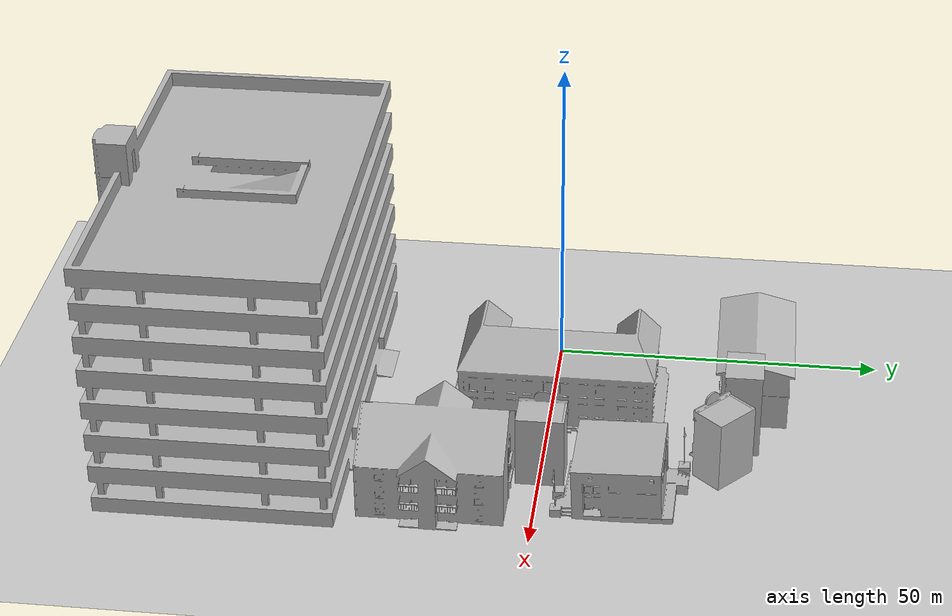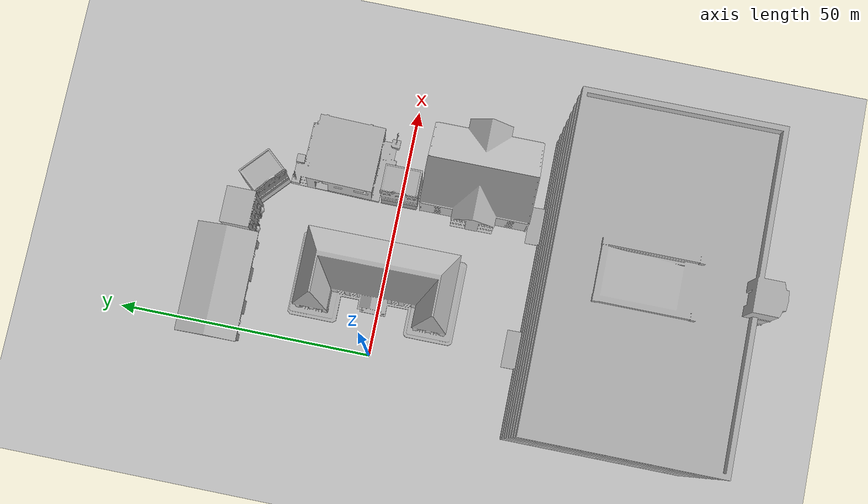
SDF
<sdf version="1.7">
 <world name="default">
  <light name="sun" type="directional">
   <pose>0 0 10 0 -0 0</pose>
   <diffuse>0.8 0.8 0.8 1</diffuse>
   <specular>0.2 0.2 0.2 1</specular>
   <attenuation>
    <range>1000</range>
    <constant>0.9</constant>
    <linear>0.01</linear>
    <quadratic>0.001</quadratic>
   </attenuation>
   <direction>-0.5 0.1 -0.9</direction>
   <spot><inner_angle>0</inner_angle><outer_angle>0</outer_angle><falloff>0</falloff></spot>
  </light>
  <model name="ground_plane">
   <static>1</static>
   <link name="link">
    <collision name="collision">
     <geometry><plane><normal>0 0 1</normal><size>100 100</size></plane></geometry>
     <surface>
      <contact><collide_bitmask>65535</collide_bitmask></contact>
      <friction><ode><mu>100</mu><mu2>50</mu2></ode></friction>
     </surface>
    </collision>
    <visual name="visual">
     <cast_shadows>0</cast_shadows>
     <geometry><plane><normal>0 0 1</normal><size>100 100</size></plane></geometry>
     <material>
      <script><uri>file://media/materials/scripts/gazebo.material</uri><name>Gazebo/Grey</name></script>
     </material>
    </visual>
   </link>
  </model>
  <gravity>0 0 -9.8</gravity>
  <magnetic_field>6e-06 2.3e-05 -4.2e-05</magnetic_field>
  <atmosphere type="adiabatic"/>
  <physics type="ode">
   <max_step_size>0.001</max_step_size>
   <real_time_factor>1</real_time_factor>
   <real_time_update_rate>1000</real_time_update_rate>
  </physics>
  <scene><ambient>0.4 0.4 0.4 1</ambient><background>0.7 0.7 0.7 1</background><shadows>1</shadows></scene>
  <audio><device>default</device></audio>
  <spherical_coordinates>
   <surface_model>EARTH_WGS84</surface_model>
   <latitude_deg>0</latitude_deg>
   <longitude_deg>0</longitude_deg>
   <elevation>0</elevation>
   <heading_deg>0</heading_deg>
  </spherical_coordinates>
  <model name="school">
   <static>1</static>
   <link name="link">
    <collision name="collision">
     <geometry><mesh><uri>model://school/meshes/school.dae</uri></mesh></geometry>
    </collision>
    <visual name="visual"><geometry><mesh><uri>model://school/meshes/school.dae</uri></mesh></geometry></visual>
   </link>
   <pose>16.0941 1.03506 0 0 0 -1.57</pose>
  </model>
  <model name="thrift_shop">
   <static>1</static>
   <link name="link">
    <collision name="collision">
     <pose>0 0 5.69469 0 -0 0</pose>
     <geometry><box><size>7.21297 5.43165 11.3894</size></box></geometry>
    </collision>
    <visual name="visual">
     <pose>0 -0.912491 0 0 -0 0</pose>
     <geometry><mesh><uri>model://thrift_shop/meshes/thrift_shop.dae</uri></mesh></geometry>
    </visual>
   </link>
   <pose>33.3965 0.162969 0 0 0 -1.57</pose>
  </model>
  <model name="salon">
   <static>1</static>
   <link name="link">
    <collision name="collision">
     <pose>0 0 5.69469 0 -0 0</pose>
     <geometry><box><size>7.21297 5.37875 11.3894</size></box></geometry>
    </collision>
    <visual name="visual">
     <pose>0 -0.903605 0 0 -0 0</pose>
     <geometry><mesh><uri>model://salon/meshes/salon.dae</uri></mesh></geometry>
    </visual>
   </link>
   <pose>30.1133 26.9096 0 0 0 -0.727755</pose>
  </model>
  <model name="police_station">
   <static>1</static>
   <link name="link">
    <collision name="collision_main">
     <pose>0 0 4.28998 0 -0 0</pose>
     <geometry><box><size>13.037 13.037 8.57995</size></box></geometry>
    </collision>
    <collision name="collision_landing">
     <pose>0 0 0.464086 0 -0 0</pose>
     <geometry><box><size>13.037 16.2446 0.928173</size></box></geometry>
    </collision>
    <visual name="visual">
     <geometry><mesh><uri>model://police_station/meshes/police_station.dae</uri></mesh></geometry>
    </visual>
   </link>
   <pose>37.0929 12.329 0 -0.041104 -0.016279 3.12646</pose>
  </model>
  <model name="law_office">
   <static>1</static>
   <link name="link">
    <collision name="collision">
     <pose>0 0 6.96244 0 -0 0</pose>
     <geometry><box><size>6.84401 5.43165 13.9249</size></box></geometry>
    </collision>
    <visual name="visual">
     <geometry><mesh><uri>model://law_office/meshes/law_office.dae</uri></mesh></geometry>
    </visual>
   </link>
   <pose>21.8767 29.4721 0 0 -0 0</pose>
  </model>
  <model name="apartment">
   <static>1</static>
   <link name="link">
    <collision name="collision">
     <geometry><mesh><uri>model://apartment/meshes/apartment.dae</uri></mesh></geometry>
    </collision>
    <visual name="visual">
     <geometry><mesh><uri>model://apartment/meshes/apartment.dae</uri></mesh></geometry>
    </visual>
   </link>
   <pose>38.5465 -14.7687 0 0 -0 0</pose>
  </model>
  <model name="fire_station">
   <static>1</static>
   <link name="link">
    <collision name="main">
     <pose>0 -0.135 5 0 -0 0</pose>
     <geometry><box><size>19.98 9.68 10</size></box></geometry>
    </collision>
    <collision name="front_top">
     <pose>0 4.957 7 0 -0 0</pose>
     <geometry><box><size>20 0.515 6</size></box></geometry>
    </collision>
    <collision name="column_0">
     <pose>9.333 4.957 2 0 -0 0</pose>
     <geometry><box><size>1.315 0.515 4</size></box></geometry>
    </collision>
    <collision name="column_1">
     <pose>3.33 4.957 2 0 -0 0</pose>
     <geometry><box><size>2.63 0.515 4</size></box></geometry>
    </collision>
    <collision name="column_2">
     <pose>-3.33 4.957 2 0 -0 0</pose>
     <geometry><box><size>2.63 0.515 4</size></box></geometry>
    </collision>
    <collision name="column_3">
     <pose>-9.333 4.957 2 0 -0 0</pose>
     <geometry><box><size>1.315 0.515 4</size></box></geometry>
    </collision>
    <collision name="roof_back">
     <pose>0 -2.742 10.467 0.25 -0 0</pose>
     <geometry><box><size>21.47 6.12 0.28</size></box></geometry>
    </collision>
    <collision name="roof_front">
     <pose>0 3.12 10.467 -0.25 0 0</pose>
     <geometry><box><size>21.47 6.12 0.28</size></box></geometry>
    </collision>
    <collision name="roof_base">
     <pose>0 0.188 9.705 0 -0 0</pose>
     <geometry><box><size>21.47 11.86 0.28</size></box></geometry>
    </collision>
    <collision name="roof_filling_0">
     <pose>0 0.188 9.985 0 -0 0</pose>
     <geometry><box><size>21.47 9.53 0.28</size></box></geometry>
    </collision>
    <collision name="roof_filling_1">
     <pose>0 0.188 10.14 0 -0 0</pose>
     <geometry><box><size>21.47 8.41 0.28</size></box></geometry>
    </collision>
    <collision name="roof_filling_2">
     <pose>0 0.188 10.42 0 -0 0</pose>
     <geometry><box><size>21.47 6.25 0.28</size></box></geometry>
    </collision>
    <collision name="roof_filling_3">
     <pose>0 0.188 10.7 0 -0 0</pose>
     <geometry><box><size>21.47 4.05 0.28</size></box></geometry>
    </collision>
    <collision name="roof_filling_4">
     <pose>0 0.188 10.98 0 -0 0</pose>
     <geometry><box><size>21.47 1.83 0.28</size></box></geometry>
    </collision>
    <visual name="visual">
     <geometry><mesh><uri>model://fire_station/meshes/fire_station.dae</uri></mesh></geometry>
    </visual>
   </link>
   <pose>7.61867 31.1715 0 0 0 -3.13393</pose>
  </model>
  <model name="parking_garage">
   <static>1</static>
   <link name="link">
    <collision name="collision">
     <geometry><mesh><uri>model://parking_garage/meshes/parking_garage.dae</uri></mesh></geometry>
    </collision>
    <visual name="visual">
     <geometry><mesh><uri>model://parking_garage/meshes/parking_garage.dae</uri></mesh></geometry>
    </visual>
   </link>
   <pose>19.31 -46.1329 0 0 -0 0</pose>
  </model>
 </world>
</sdf>
